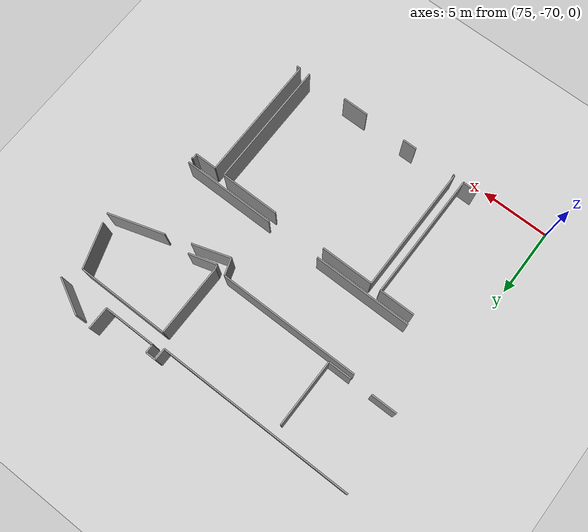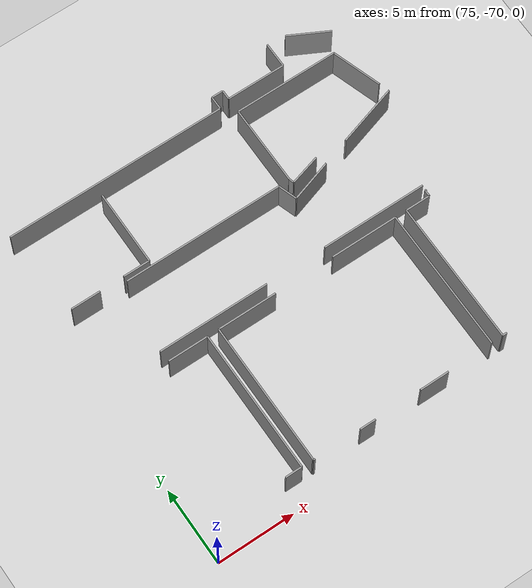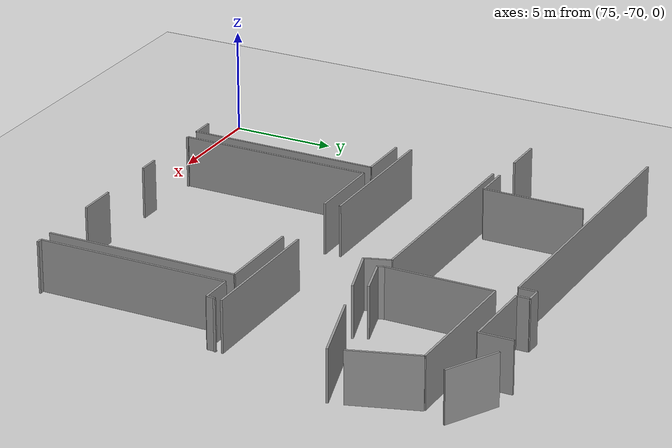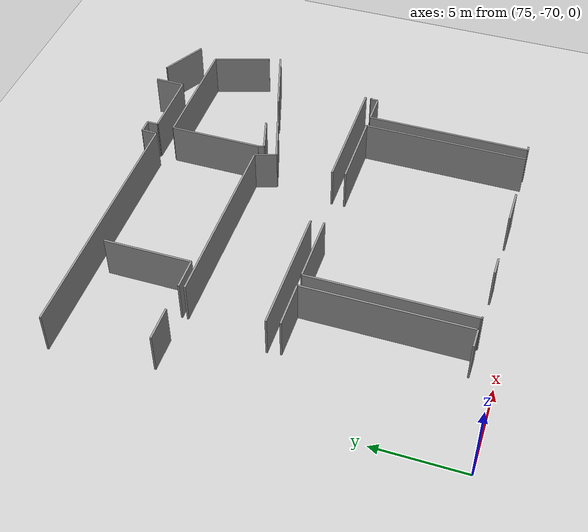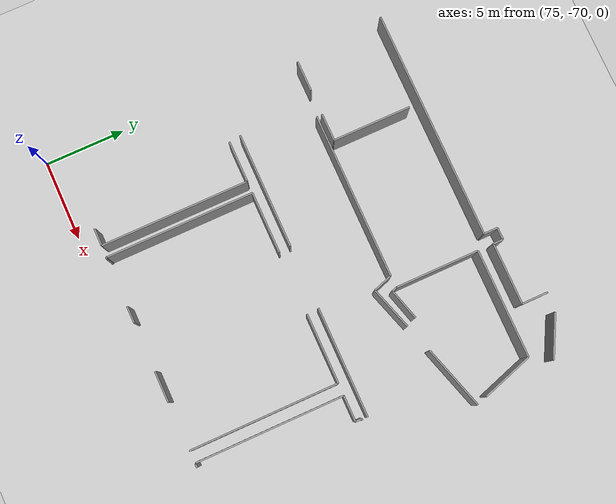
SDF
<sdf version="1.6">
 <world name="default">
  <model name="ground_plane">
   <static>1</static>
   <link name="link">
    <collision name="collision">
     <geometry><plane><normal>0 0 1</normal><size>100 100</size></plane></geometry>
     <surface><friction><ode><mu>100</mu><mu2>50</mu2></ode></friction></surface>
    </collision>
    <visual name="visual">
     <cast_shadows>0</cast_shadows>
     <geometry><plane><normal>0 0 1</normal><size>100 100</size></plane></geometry>
     <material>
      <script><uri>file://media/materials/scripts/gazebo.material</uri><name>Gazebo/Grey</name></script>
     </material>
    </visual>
   </link>
  </model>
  <model name="0510035519_A_40_1_102">
   <static>1</static>
   <link name="Wall_846">
    <collision name="Wall_846_Collision">
     <geometry><box><size>2.59499301055 0.1 2.5</size></box></geometry>
     <pose>1.29749650527 0 1.25 0 0 0</pose>
    </collision>
    <visual name="Wall_846_Visual">
     <pose>1.29749650527 0 1.25 0 0 0</pose>
     <geometry><box><size>2.59499301055 0.1 2.5</size></box></geometry>
     <material>
      <script><uri>file://media/materials/scripts/gazebo.material</uri><name>Gazebo/Grey</name></script>
      <ambient>1 1 1 1</ambient>
     </material>
    </visual>
    <pose>195.43042318 -128.176642521 0 0 0 0.0</pose>
   </link>
   <link name="Wall_847">
    <collision name="Wall_847_Collision">
     <geometry><box><size>9.20828567798 0.1 2.5</size></box></geometry>
     <pose>4.60414283899 0 1.25 0 0 0</pose>
    </collision>
    <visual name="Wall_847_Visual">
     <pose>4.60414283899 0 1.25 0 0 0</pose>
     <geometry><box><size>9.20828567798 0.1 2.5</size></box></geometry>
     <material>
      <script><uri>file://media/materials/scripts/gazebo.material</uri><name>Gazebo/Grey</name></script>
      <ambient>1 1 1 1</ambient>
     </material>
    </visual>
    <pose>198.02541619 -128.176642521 0 0 0 -1.57079632679</pose>
   </link>
   <link name="Wall_848">
    <collision name="Wall_848_Collision">
     <geometry><box><size>1.08476299403 0.1 2.5</size></box></geometry>
     <pose>0.542381497014 0 1.25 0 0 0</pose>
    </collision>
    <visual name="Wall_848_Visual">
     <pose>0.542381497014 0 1.25 0 0 0</pose>
     <geometry><box><size>1.08476299403 0.1 2.5</size></box></geometry>
     <material>
      <script><uri>file://media/materials/scripts/gazebo.material</uri><name>Gazebo/Grey</name></script>
      <ambient>1 1 1 1</ambient>
     </material>
    </visual>
    <pose>198.02541619 -137.384928199 0 0 0 3.14159265359</pose>
   </link>
   <link name="Wall_851">
    <collision name="Wall_851_Collision">
     <geometry><box><size>9.18693607828 0.1 2.5</size></box></geometry>
     <pose>4.59346803914 0 1.25 0 0 0</pose>
    </collision>
    <visual name="Wall_851_Visual">
     <pose>4.59346803914 0 1.25 0 0 0</pose>
     <geometry><box><size>9.18693607828 0.1 2.5</size></box></geometry>
     <material>
      <script><uri>file://media/materials/scripts/gazebo.material</uri><name>Gazebo/Grey</name></script>
      <ambient>1 1 1 1</ambient>
     </material>
    </visual>
    <pose>198.773414665 -137.363832761 0 0 0 1.57079632679</pose>
   </link>
   <link name="Wall_852">
    <collision name="Wall_852_Collision">
     <geometry><box><size>3.83657389757 0.1 2.5</size></box></geometry>
     <pose>1.91828694879 0 1.25 0 0 0</pose>
    </collision>
    <visual name="Wall_852_Visual">
     <pose>1.91828694879 0 1.25 0 0 0</pose>
     <geometry><box><size>3.83657389757 0.1 2.5</size></box></geometry>
     <material>
      <script><uri>file://media/materials/scripts/gazebo.material</uri><name>Gazebo/Grey</name></script>
      <ambient>1 1 1 1</ambient>
     </material>
    </visual>
    <pose>198.773414665 -128.176896683 0 0 0 0.0</pose>
   </link>
   <link name="Wall_853">
    <collision name="Wall_853_Collision">
     <geometry><box><size>4.33498538569 0.1 2.5</size></box></geometry>
     <pose>2.16749269285 0 1.25 0 0 0</pose>
    </collision>
    <visual name="Wall_853_Visual">
     <pose>2.16749269285 0 1.25 0 0 0</pose>
     <geometry><box><size>4.33498538569 0.1 2.5</size></box></geometry>
     <material>
      <script><uri>file://media/materials/scripts/gazebo.material</uri><name>Gazebo/Grey</name></script>
      <ambient>1 1 1 1</ambient>
     </material>
    </visual>
    <pose>206.515694497 -128.176896683 0 0 0 0.0</pose>
   </link>
   <link name="Wall_854">
    <collision name="Wall_854_Collision">
     <geometry><box><size>9.24463082984 0.1 2.5</size></box></geometry>
     <pose>4.62231541492 0 1.25 0 0 0</pose>
    </collision>
    <visual name="Wall_854_Visual">
     <pose>4.62231541492 0 1.25 0 0 0</pose>
     <geometry><box><size>9.24463082984 0.1 2.5</size></box></geometry>
     <material>
      <script><uri>file://media/materials/scripts/gazebo.material</uri><name>Gazebo/Grey</name></script>
      <ambient>1 1 1 1</ambient>
     </material>
    </visual>
    <pose>210.850679883 -128.176896683 0 0 0 -1.57079632679</pose>
   </link>
   <link name="Wall_855">
    <collision name="Wall_855_Collision">
     <geometry><box><size>1.9097725251 0.1 2.5</size></box></geometry>
     <pose>0.954886262549 0 1.25 0 0 0</pose>
    </collision>
    <visual name="Wall_855_Visual">
     <pose>0.954886262549 0 1.25 0 0 0</pose>
     <geometry><box><size>1.9097725251 0.1 2.5</size></box></geometry>
     <material>
      <script><uri>file://media/materials/scripts/gazebo.material</uri><name>Gazebo/Grey</name></script>
      <ambient>1 1 1 1</ambient>
     </material>
    </visual>
    <pose>207.861481764 -137.421527513 0 0 0 3.14159265359</pose>
   </link>
   <link name="Wall_856">
    <collision name="Wall_856_Collision">
     <geometry><box><size>1.03011818528 0.1 2.5</size></box></geometry>
     <pose>0.515059092642 0 1.25 0 0 0</pose>
    </collision>
    <visual name="Wall_856_Visual">
     <pose>0.515059092642 0 1.25 0 0 0</pose>
     <geometry><box><size>1.03011818528 0.1 2.5</size></box></geometry>
     <material>
      <script><uri>file://media/materials/scripts/gazebo.material</uri><name>Gazebo/Grey</name></script>
      <ambient>1 1 1 1</ambient>
     </material>
    </visual>
    <pose>202.917270301 -137.421527513 0 0 0 3.14159265359</pose>
   </link>
   <link name="Wall_857">
    <collision name="Wall_857_Collision">
     <geometry><box><size>0.111831236498 0.1 2.5</size></box></geometry>
     <pose>0.0559156182488 0 1.25 0 0 0</pose>
    </collision>
    <visual name="Wall_857_Visual">
     <pose>0.0559156182488 0 1.25 0 0 0</pose>
     <geometry><box><size>0.111831236498 0.1 2.5</size></box></geometry>
     <material>
      <script><uri>file://media/materials/scripts/gazebo.material</uri><name>Gazebo/Grey</name></script>
      <ambient>1 1 1 1</ambient>
     </material>
    </visual>
    <pose>198.877621045 -137.421527513 0 0 0 3.14159265359</pose>
   </link>
   <link name="Wall_858">
    <collision name="Wall_858_Collision">
     <geometry><box><size>0.0581964157142 0.1 2.5</size></box></geometry>
     <pose>0.0290982078571 0 1.25 0 0 0</pose>
    </collision>
    <visual name="Wall_858_Visual">
     <pose>0.0290982078571 0 1.25 0 0 0</pose>
     <geometry><box><size>0.0581964157142 0.1 2.5</size></box></geometry>
     <material>
      <script><uri>file://media/materials/scripts/gazebo.material</uri><name>Gazebo/Grey</name></script>
      <ambient>1 1 1 1</ambient>
     </material>
    </visual>
    <pose>198.765789808 -137.421527513 0 0 0 1.43939919514</pose>
   </link>
   <link name="Wall_1004">
    <collision name="Wall_1004_Collision">
     <geometry><box><size>4.87863769221 0.1 2.5</size></box></geometry>
     <pose>2.4393188461 0 1.25 0 0 0</pose>
    </collision>
    <visual name="Wall_1004_Visual">
     <pose>2.4393188461 0 1.25 0 0 0</pose>
     <geometry><box><size>4.87863769221 0.1 2.5</size></box></geometry>
     <material>
      <script><uri>file://media/materials/scripts/gazebo.material</uri><name>Gazebo/Grey</name></script>
      <ambient>1 1 1 1</ambient>
     </material>
    </visual>
    <pose>197.86758165 -117.65637311 0 0 0 -1.57079632679</pose>
   </link>
   <link name="Wall_1005">
    <collision name="Wall_1005_Collision">
     <geometry><box><size>1.71965942305 0.1 2.5</size></box></geometry>
     <pose>0.859829711526 0 1.25 0 0 0</pose>
    </collision>
    <visual name="Wall_1005_Visual">
     <pose>0.859829711526 0 1.25 0 0 0</pose>
     <geometry><box><size>1.71965942305 0.1 2.5</size></box></geometry>
     <material>
      <script><uri>file://media/materials/scripts/gazebo.material</uri><name>Gazebo/Grey</name></script>
      <ambient>1 1 1 1</ambient>
     </material>
    </visual>
    <pose>197.86758165 -122.535010802 0 0 0 3.14159265359</pose>
   </link>
   <link name="Wall_1006">
    <collision name="Wall_1006_Collision">
     <geometry><box><size>1.91206040452 0.1 2.5</size></box></geometry>
     <pose>0.956030202258 0 1.25 0 0 0</pose>
    </collision>
    <visual name="Wall_1006_Visual">
     <pose>0.956030202258 0 1.25 0 0 0</pose>
     <geometry><box><size>1.91206040452 0.1 2.5</size></box></geometry>
     <material>
      <script><uri>file://media/materials/scripts/gazebo.material</uri><name>Gazebo/Grey</name></script>
      <ambient>1 1 1 1</ambient>
     </material>
    </visual>
    <pose>194.567289363 -122.535010802 0 0 0 -3.14092802521</pose>
   </link>
   <link name="Wall_1007">
    <collision name="Wall_1007_Collision">
     <geometry><box><size>5.18464862117 0.1 2.5</size></box></geometry>
     <pose>2.59232431059 0 1.25 0 0 0</pose>
    </collision>
    <visual name="Wall_1007_Visual">
     <pose>2.59232431059 0 1.25 0 0 0</pose>
     <geometry><box><size>5.18464862117 0.1 2.5</size></box></geometry>
     <material>
      <script><uri>file://media/materials/scripts/gazebo.material</uri><name>Gazebo/Grey</name></script>
      <ambient>1 1 1 1</ambient>
     </material>
    </visual>
    <pose>207.237768459 -122.834413521 0 0 0 1.57079632679</pose>
   </link>
   <link name="Wall_1008">
    <collision name="Wall_1008_Collision">
     <geometry><box><size>6.72995298005 0.1 2.5</size></box></geometry>
     <pose>3.36497649002 0 1.25 0 0 0</pose>
    </collision>
    <visual name="Wall_1008_Visual">
     <pose>3.36497649002 0 1.25 0 0 0</pose>
     <geometry><box><size>6.72995298005 0.1 2.5</size></box></geometry>
     <material>
      <script><uri>file://media/materials/scripts/gazebo.material</uri><name>Gazebo/Grey</name></script>
      <ambient>1 1 1 1</ambient>
     </material>
    </visual>
    <pose>207.237768459 -117.6497649 0 0 0 0.0</pose>
   </link>
   <link name="Wall_1009">
    <collision name="Wall_1009_Collision">
     <geometry><box><size>3.31660592915 0.1 2.5</size></box></geometry>
     <pose>1.65830296458 0 1.25 0 0 0</pose>
    </collision>
    <visual name="Wall_1009_Visual">
     <pose>1.65830296458 0 1.25 0 0 0</pose>
     <geometry><box><size>3.31660592915 0.1 2.5</size></box></geometry>
     <material>
      <script><uri>file://media/materials/scripts/gazebo.material</uri><name>Gazebo/Grey</name></script>
      <ambient>1 1 1 1</ambient>
     </material>
    </visual>
    <pose>213.967721439 -117.6497649 0 0 0 -1.25650976717</pose>
   </link>
   <link name="Wall_1011">
    <collision name="Wall_1011_Collision">
     <geometry><box><size>2.0266697558 0.1 2.5</size></box></geometry>
     <pose>1.0133348779 0 1.25 0 0 0</pose>
    </collision>
    <visual name="Wall_1011_Visual">
     <pose>1.0133348779 0 1.25 0 0 0</pose>
     <geometry><box><size>2.0266697558 0.1 2.5</size></box></geometry>
     <material>
      <script><uri>file://media/materials/scripts/gazebo.material</uri><name>Gazebo/Grey</name></script>
      <ambient>1 1 1 1</ambient>
     </material>
    </visual>
    <pose>209.281738467 -122.585843182 0 0 0 -2.86141533749</pose>
   </link>
   <link name="Wall_1012">
    <collision name="Wall_1012_Collision">
     <geometry><box><size>0.326394749057 0.1 2.5</size></box></geometry>
     <pose>0.163197374529 0 1.25 0 0 0</pose>
    </collision>
    <visual name="Wall_1012_Visual">
     <pose>0.163197374529 0 1.25 0 0 0</pose>
     <geometry><box><size>0.326394749057 0.1 2.5</size></box></geometry>
     <material>
      <script><uri>file://media/materials/scripts/gazebo.material</uri><name>Gazebo/Grey</name></script>
      <ambient>1 1 1 1</ambient>
     </material>
    </visual>
    <pose>207.334095819 -123.146270174 0 0 0 1.87038302345</pose>
   </link>
   <link name="Wall_1030">
    <collision name="Wall_1030_Collision">
     <geometry><box><size>9.20193163045 0.1 2.5</size></box></geometry>
     <pose>4.60096581522 0 1.25 0 0 0</pose>
    </collision>
    <visual name="Wall_1030_Visual">
     <pose>4.60096581522 0 1.25 0 0 0</pose>
     <geometry><box><size>9.20193163045 0.1 2.5</size></box></geometry>
     <material>
      <script><uri>file://media/materials/scripts/gazebo.material</uri><name>Gazebo/Grey</name></script>
      <ambient>1 1 1 1</ambient>
     </material>
    </visual>
    <pose>211.616469691 -137.387469818 0 0 0 1.57079632679</pose>
   </link>
   <link name="Wall_1031">
    <collision name="Wall_1031_Collision">
     <geometry><box><size>1.60376159614 0.1 2.5</size></box></geometry>
     <pose>0.801880798068 0 1.25 0 0 0</pose>
    </collision>
    <visual name="Wall_1031_Visual">
     <pose>0.801880798068 0 1.25 0 0 0</pose>
     <geometry><box><size>1.60376159614 0.1 2.5</size></box></geometry>
     <material>
      <script><uri>file://media/materials/scripts/gazebo.material</uri><name>Gazebo/Grey</name></script>
      <ambient>1 1 1 1</ambient>
     </material>
    </visual>
    <pose>211.616469691 -128.185538188 0 0 0 0.0</pose>
   </link>
   <link name="Wall_1032">
    <collision name="Wall_1032_Collision">
     <geometry><box><size>0.400559156182 0.1 2.5</size></box></geometry>
     <pose>0.200279578091 0 1.25 0 0 0</pose>
    </collision>
    <visual name="Wall_1032_Visual">
     <pose>0.200279578091 0 1.25 0 0 0</pose>
     <geometry><box><size>0.400559156182 0.1 2.5</size></box></geometry>
     <material>
      <script><uri>file://media/materials/scripts/gazebo.material</uri><name>Gazebo/Grey</name></script>
      <ambient>1 1 1 1</ambient>
     </material>
    </visual>
    <pose>213.220231287 -128.185538188 0 0 0 1.57079632679</pose>
   </link>
   <link name="Wall_1033">
    <collision name="Wall_1033_Collision">
     <geometry><box><size>0.0907357987037 0.1 2.5</size></box></geometry>
     <pose>0.0453678993519 0 1.25 0 0 0</pose>
    </collision>
    <visual name="Wall_1033_Visual">
     <pose>0.0453678993519 0 1.25 0 0 0</pose>
     <geometry><box><size>0.0907357987037 0.1 2.5</size></box></geometry>
     <material>
      <script><uri>file://media/materials/scripts/gazebo.material</uri><name>Gazebo/Grey</name></script>
      <ambient>1 1 1 1</ambient>
     </material>
    </visual>
    <pose>213.220231287 -127.784979032 0 0 0 0.0</pose>
   </link>
   <link name="Wall_1043">
    <collision name="Wall_1043_Collision">
     <geometry><box><size>0.274760770741 0.1 2.5</size></box></geometry>
     <pose>0.13738038537 0 1.25 0 0 0</pose>
    </collision>
    <visual name="Wall_1043_Visual">
     <pose>0.13738038537 0 1.25 0 0 0</pose>
     <geometry><box><size>0.274760770741 0.1 2.5</size></box></geometry>
     <material>
      <script><uri>file://media/materials/scripts/gazebo.material</uri><name>Gazebo/Grey</name></script>
      <ambient>1 1 1 1</ambient>
     </material>
    </visual>
    <pose>211.891218706 -137.384928199 0 0 0 -3.13234222365</pose>
   </link>
   <link name="Wall_1051">
    <collision name="Wall_1051_Collision">
     <geometry><box><size>10.3494726141 0.1 2.5</size></box></geometry>
     <pose>5.17473630703 0 1.25 0 0 0</pose>
    </collision>
    <visual name="Wall_1051_Visual">
     <pose>5.17473630703 0 1.25 0 0 0</pose>
     <geometry><box><size>10.3494726141 0.1 2.5</size></box></geometry>
     <material>
      <script><uri>file://media/materials/scripts/gazebo.material</uri><name>Gazebo/Grey</name></script>
      <ambient>1 1 1 1</ambient>
     </material>
    </visual>
    <pose>196.146905579 -122.869742026 0 0 0 0.0</pose>
   </link>
   <link name="Wall_1052">
    <collision name="Wall_1052_Collision">
     <geometry><box><size>1.24240727554 0.1 2.5</size></box></geometry>
     <pose>0.62120363777 0 1.25 0 0 0</pose>
    </collision>
    <visual name="Wall_1052_Visual">
     <pose>0.62120363777 0 1.25 0 0 0</pose>
     <geometry><box><size>1.24240727554 0.1 2.5</size></box></geometry>
     <material>
      <script><uri>file://media/materials/scripts/gazebo.material</uri><name>Gazebo/Grey</name></script>
      <ambient>1 1 1 1</ambient>
     </material>
    </visual>
    <pose>206.496378193 -122.869742026 0 0 0 -1.25008083478</pose>
   </link>
   <link name="Wall_1053">
    <collision name="Wall_1053_Collision">
     <geometry><box><size>2.78620898657 0.1 2.5</size></box></geometry>
     <pose>1.39310449328 0 1.25 0 0 0</pose>
    </collision>
    <visual name="Wall_1053_Visual">
     <pose>1.39310449328 0 1.25 0 0 0</pose>
     <geometry><box><size>2.78620898657 0.1 2.5</size></box></geometry>
     <material>
      <script><uri>file://media/materials/scripts/gazebo.material</uri><name>Gazebo/Grey</name></script>
      <ambient>1 1 1 1</ambient>
     </material>
    </visual>
    <pose>206.888041683 -124.048799085 0 0 0 0.306634286213</pose>
   </link>
   <link name="Wall_1054">
    <collision name="Wall_1054_Collision">
     <geometry><box><size>4.09883803462 0.1 2.5</size></box></geometry>
     <pose>2.04941901731 0 1.25 0 0 0</pose>
    </collision>
    <visual name="Wall_1054_Visual">
     <pose>2.04941901731 0 1.25 0 0 0</pose>
     <geometry><box><size>4.09883803462 0.1 2.5</size></box></geometry>
     <material>
      <script><uri>file://media/materials/scripts/gazebo.material</uri><name>Gazebo/Grey</name></script>
      <ambient>1 1 1 1</ambient>
     </material>
    </visual>
    <pose>211.295971534 -122.647604524 0 0 0 0.296962568371</pose>
   </link>
   <link name="Wall_1058">
    <collision name="Wall_1058_Collision">
     <geometry><box><size>6.80645571229 0.1 2.5</size></box></geometry>
     <pose>3.40322785614 0 1.25 0 0 0</pose>
    </collision>
    <visual name="Wall_1058_Visual">
     <pose>3.40322785614 0 1.25 0 0 0</pose>
     <geometry><box><size>6.80645571229 0.1 2.5</size></box></geometry>
     <material>
      <script><uri>file://media/materials/scripts/gazebo.material</uri><name>Gazebo/Grey</name></script>
      <ambient>1 1 1 1</ambient>
     </material>
    </visual>
    <pose>213.283263439 -127.442114627 0 0 0 3.14159265359</pose>
   </link>
   <link name="Wall_1059">
    <collision name="Wall_1059_Collision">
     <geometry><box><size>7.18515694497 0.1 2.5</size></box></geometry>
     <pose>3.59257847249 0 1.25 0 0 0</pose>
    </collision>
    <visual name="Wall_1059_Visual">
     <pose>3.59257847249 0 1.25 0 0 0</pose>
     <geometry><box><size>7.18515694497 0.1 2.5</size></box></geometry>
     <material>
      <script><uri>file://media/materials/scripts/gazebo.material</uri><name>Gazebo/Grey</name></script>
      <ambient>1 1 1 1</ambient>
     </material>
    </visual>
    <pose>202.530944211 -127.442114627 0 0 0 3.14159265359</pose>
   </link>
   <link name="Wall_1089">
    <collision name="Wall_1089_Collision">
     <geometry><box><size>2.76760832934 0.1 2.5</size></box></geometry>
     <pose>1.38380416467 0 1.25 0 0 0</pose>
    </collision>
    <visual name="Wall_1089_Visual">
     <pose>1.38380416467 0 1.25 0 0 0</pose>
     <geometry><box><size>2.76760832934 0.1 2.5</size></box></geometry>
     <material>
      <script><uri>file://media/materials/scripts/gazebo.material</uri><name>Gazebo/Grey</name></script>
      <ambient>1 1 1 1</ambient>
     </material>
    </visual>
    <pose>214.712669971 -116.415046385 0 0 0 2.65790172182</pose>
   </link>
   <link name="Wall_1185">
    <collision name="Wall_1185_Collision">
     <geometry><box><size>1.64442750032 0.1 2.5</size></box></geometry>
     <pose>0.822213750159 0 1.25 0 0 0</pose>
    </collision>
    <visual name="Wall_1185_Visual">
     <pose>0.822213750159 0 1.25 0 0 0</pose>
     <geometry><box><size>1.64442750032 0.1 2.5</size></box></geometry>
     <material>
      <script><uri>file://media/materials/scripts/gazebo.material</uri><name>Gazebo/Grey</name></script>
      <ambient>1 1 1 1</ambient>
     </material>
    </visual>
    <pose>211.067225823 -115.014868471 0 0 0 -1.57079632679</pose>
   </link>
   <link name="Wall_1186">
    <collision name="Wall_1186_Collision">
     <geometry><box><size>3.82183250731 0.1 2.5</size></box></geometry>
     <pose>1.91091625365 0 1.25 0 0 0</pose>
    </collision>
    <visual name="Wall_1186_Visual">
     <pose>1.91091625365 0 1.25 0 0 0</pose>
     <geometry><box><size>3.82183250731 0.1 2.5</size></box></geometry>
     <material>
      <script><uri>file://media/materials/scripts/gazebo.material</uri><name>Gazebo/Grey</name></script>
      <ambient>1 1 1 1</ambient>
     </material>
    </visual>
    <pose>211.067225823 -116.659295972 0 0 0 3.14159265359</pose>
   </link>
   <link name="Wall_1187">
    <collision name="Wall_1187_Collision">
     <geometry><box><size>0.614055153133 0.1 2.5</size></box></geometry>
     <pose>0.307027576566 0 1.25 0 0 0</pose>
    </collision>
    <visual name="Wall_1187_Visual">
     <pose>0.307027576566 0 1.25 0 0 0</pose>
     <geometry><box><size>0.614055153133 0.1 2.5</size></box></geometry>
     <material>
      <script><uri>file://media/materials/scripts/gazebo.material</uri><name>Gazebo/Grey</name></script>
      <ambient>1 1 1 1</ambient>
     </material>
    </visual>
    <pose>207.245393316 -116.659295972 0 0 0 1.57079632679</pose>
   </link>
   <link name="Wall_1188">
    <collision name="Wall_1188_Collision">
     <geometry><box><size>0.751302579743 0.1 2.5</size></box></geometry>
     <pose>0.375651289872 0 1.25 0 0 0</pose>
    </collision>
    <visual name="Wall_1188_Visual">
     <pose>0.375651289872 0 1.25 0 0 0</pose>
     <geometry><box><size>0.751302579743 0.1 2.5</size></box></geometry>
     <material>
      <script><uri>file://media/materials/scripts/gazebo.material</uri><name>Gazebo/Grey</name></script>
      <ambient>1 1 1 1</ambient>
     </material>
    </visual>
    <pose>207.245393316 -116.045240818 0 0 0 3.14159265359</pose>
   </link>
   <link name="Wall_1189">
    <collision name="Wall_1189_Collision">
     <geometry><box><size>0.859829711526 0.1 2.5</size></box></geometry>
     <pose>0.429914855763 0 1.25 0 0 0</pose>
    </collision>
    <visual name="Wall_1189_Visual">
     <pose>0.429914855763 0 1.25 0 0 0</pose>
     <geometry><box><size>0.859829711526 0.1 2.5</size></box></geometry>
     <material>
      <script><uri>file://media/materials/scripts/gazebo.material</uri><name>Gazebo/Grey</name></script>
      <ambient>1 1 1 1</ambient>
     </material>
    </visual>
    <pose>206.494090736 -116.045240818 0 0 0 -1.57079632679</pose>
   </link>
   <link name="Wall_1190">
    <collision name="Wall_1190_Collision">
     <geometry><box><size>14.3306646334 0.1 2.5</size></box></geometry>
     <pose>7.16533231669 0 1.25 0 0 0</pose>
    </collision>
    <visual name="Wall_1190_Visual">
     <pose>7.16533231669 0 1.25 0 0 0</pose>
     <geometry><box><size>14.3306646334 0.1 2.5</size></box></geometry>
     <material>
      <script><uri>file://media/materials/scripts/gazebo.material</uri><name>Gazebo/Grey</name></script>
      <ambient>1 1 1 1</ambient>
     </material>
    </visual>
    <pose>206.494090736 -116.90507053 0 0 0 3.14159265359</pose>
   </link>
   <pose>-116.6 68.721527513 0 0 0 0</pose>
  </model>
 </world>
</sdf>
